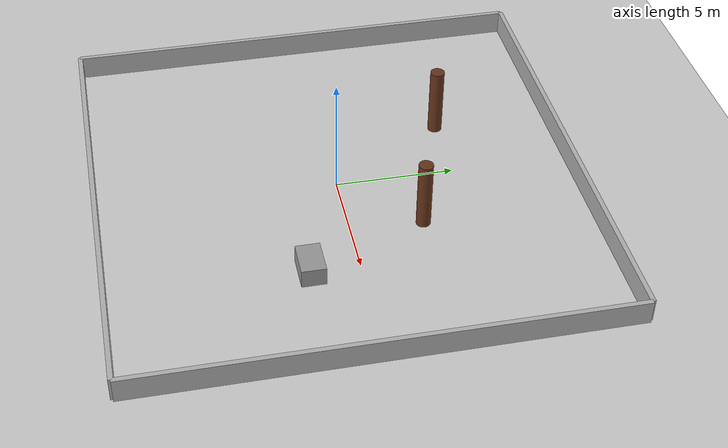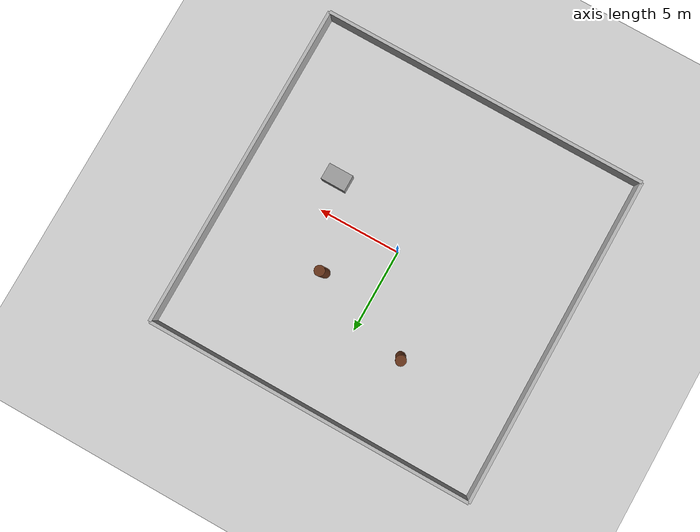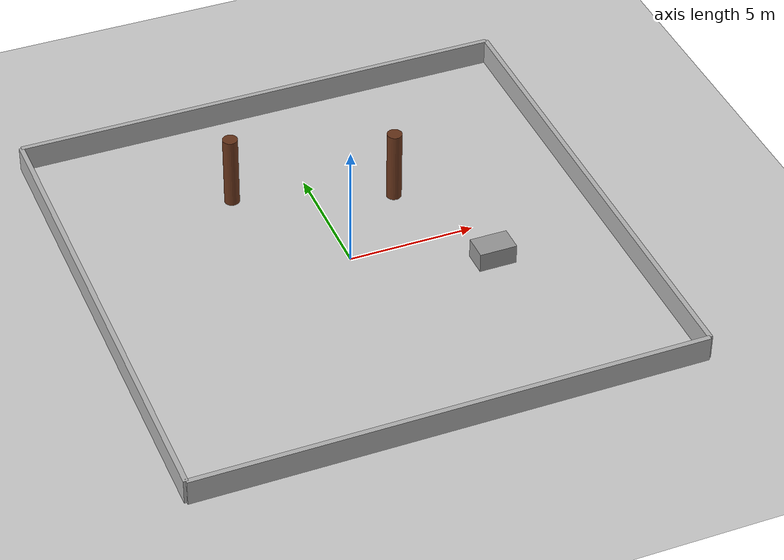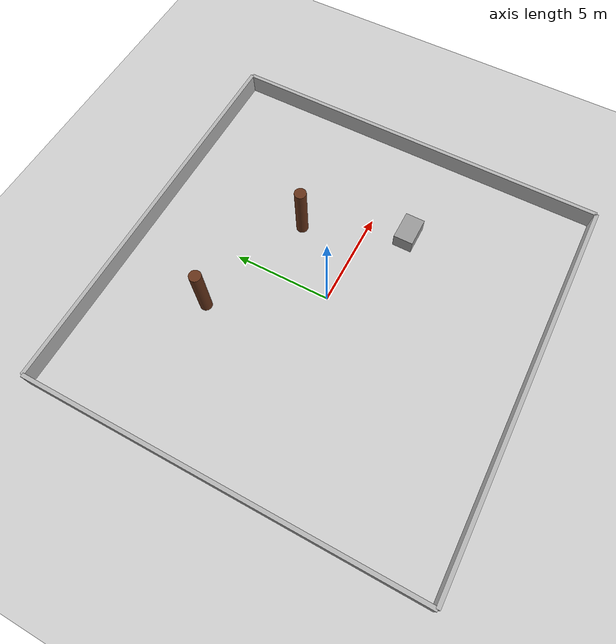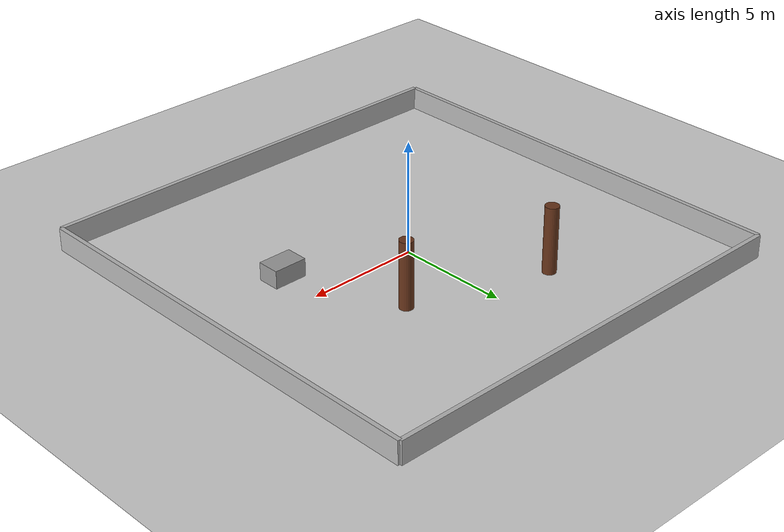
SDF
<?xml version="1.0"?>
<sdf version="1.6">
    <world name="field_environment">

        <!-- Physics -->
        <physics type="ode">
            <max_step_size>0.001</max_step_size>
            <real_time_factor>1.0</real_time_factor>
            <real_time_update_rate>1000</real_time_update_rate>
        </physics>

        <!-- Scene -->
        <scene>
            <ambient>0.4 0.4 0.4 1</ambient>
            <background>0.7 0.7 0.7 1</background>
            <shadows>true</shadows>
        </scene>

        <!-- Sun -->
        <include>
            <uri>model://sun</uri>
        </include>

        <!-- Ground Plane -->
        <include>
            <uri>model://ground_plane</uri>
        </include>

        <!-- Field Obstacles - Trees -->
        <model name="tree_1">
            <static>true</static>
            <pose>3 3 1.5 0 0 0</pose>
            <link name="link">
                <collision name="collision">
                    <geometry>
                        <cylinder>
                            <radius>0.3</radius>
                            <length>3.0</length>
                        </cylinder>
                    </geometry>
                </collision>
                <visual name="visual">
                    <geometry>
                        <cylinder>
                            <radius>0.3</radius>
                            <length>3.0</length>
                        </cylinder>
                    </geometry>
                    <material>
                        <ambient>0.4 0.2 0.1 1</ambient>
                        <diffuse>0.4 0.2 0.1 1</diffuse>
                    </material>
                </visual>
            </link>
        </model>

        <model name="tree_2">
            <static>true</static>
            <pose>-3 5 1.5 0 0 0</pose>
            <link name="link">
                <collision name="collision">
                    <geometry>
                        <cylinder>
                            <radius>0.3</radius>
                            <length>3.0</length>
                        </cylinder>
                    </geometry>
                </collision>
                <visual name="visual">
                    <geometry>
                        <cylinder>
                            <radius>0.3</radius>
                            <length>3.0</length>
                        </cylinder>
                    </geometry>
                    <material>
                        <ambient>0.4 0.2 0.1 1</ambient>
                        <diffuse>0.4 0.2 0.1 1</diffuse>
                    </material>
                </visual>
            </link>
        </model>

        <!-- Rock obstacles -->
        <model name="rock_1">
            <static>true</static>
            <pose>5 -2 0.4 0 0 0</pose>
            <link name="link">
                <collision name="collision">
                    <geometry>
                        <box>
                            <size>1.5 1.0 0.8</size>
                        </box>
                    </geometry>
                </collision>
                <visual name="visual">
                    <geometry>
                        <box>
                            <size>1.5 1.0 0.8</size>
                        </box>
                    </geometry>
                    <material>
                        <ambient>0.5 0.5 0.5 1</ambient>
                        <diffuse>0.6 0.6 0.6 1</diffuse>
                    </material>
                </visual>
            </link>
        </model>

        <!-- Walls forming exploration area -->
        <model name="wall_north">
            <static>true</static>
            <pose>0 10 0 0 0 0</pose>
            <link name="link">
                <collision name="collision">
                    <geometry>
                        <box>
                            <size>20 0.2 2.0</size>
                        </box>
                    </geometry>
                </collision>
                <visual name="visual">
                    <geometry>
                        <box>
                            <size>20 0.2 2.0</size>
                        </box>
                    </geometry>
                    <material>
                        <ambient>0.7 0.7 0.7 1</ambient>
                    </material>
                </visual>
            </link>
        </model>

        <model name="wall_south">
            <static>true</static>
            <pose>0 -10 0 0 0 0</pose>
            <link name="link">
                <collision name="collision">
                    <geometry>
                        <box>
                            <size>20 0.2 2.0</size>
                        </box>
                    </geometry>
                </collision>
                <visual name="visual">
                    <geometry>
                        <box>
                            <size>20 0.2 2.0</size>
                        </box>
                    </geometry>
                    <material>
                        <ambient>0.7 0.7 0.7 1</ambient>
                    </material>
                </visual>
            </link>
        </model>

        <model name="wall_east">
            <static>true</static>
            <pose>10 0 0 0 0 1.5708</pose>
            <link name="link">
                <collision name="collision">
                    <geometry>
                        <box>
                            <size>20 0.2 2.0</size>
                        </box>
                    </geometry>
                </collision>
                <visual name="visual">
                    <geometry>
                        <box>
                            <size>20 0.2 2.0</size>
                        </box>
                    </geometry>
                    <material>
                        <ambient>0.7 0.7 0.7 1</ambient>
                    </material>
                </visual>
            </link>
        </model>

        <model name="wall_west">
            <static>true</static>
            <pose>-10 0 0 0 0 1.5708</pose>
            <link name="link">
                <collision name="collision">
                    <geometry>
                        <box>
                            <size>20 0.2 2.0</size>
                        </box>
                    </geometry>
                </collision>
                <visual name="visual">
                    <geometry>
                        <box>
                            <size>20 0.2 2.0</size>
                        </box>
                    </geometry>
                    <material>
                        <ambient>0.7 0.7 0.7 1</ambient>
                    </material>
                </visual>
            </link>
        </model>

    </world>
</sdf>
